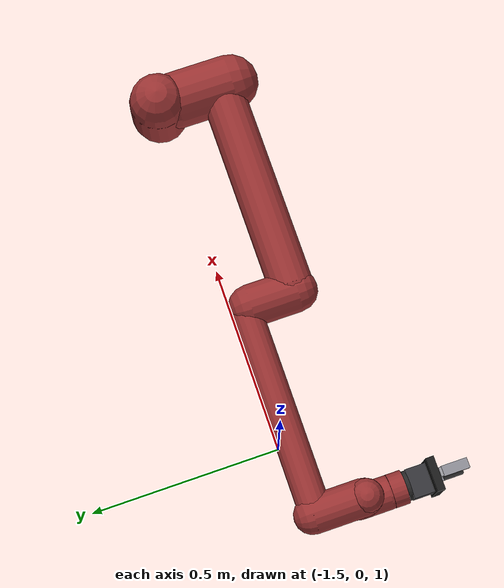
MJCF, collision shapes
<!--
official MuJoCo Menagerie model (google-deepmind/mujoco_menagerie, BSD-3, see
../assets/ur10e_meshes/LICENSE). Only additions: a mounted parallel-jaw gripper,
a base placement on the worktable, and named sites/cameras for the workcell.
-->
<mujoco model="ur10e">
  <compiler angle="radian" meshdir="../assets/ur10e_meshes" autolimits="true"/>

  <default>
    <default class="ur10e">
      <material specular="0.5" shininess="0.25"/>
      <joint axis="0 1 0" range="-6.28319 6.28319" armature="0.1"/>
      <position ctrlrange="-6.2831 6.2831"/>
      <general biastype="affine" ctrlrange="-6.2831 6.2831" gainprm="5000" biasprm="0 -5000 -500"/>
      <default class="size4">
        <joint damping="10"/>
        <general forcerange="-330 330"/>
      </default>
      <default class="size3">
        <joint damping="5"/>
        <general forcerange="-150 150"/>
        <default class="size3_limited">
          <joint range="-3.1415 3.1415"/>
          <general ctrlrange="-3.1415 3.1415"/>
        </default>
      </default>
      <default class="size2">
        <joint damping="2"/>
        <general forcerange="-56 56"/>
      </default>
      <default class="visual">
        <geom type="mesh" contype="0" conaffinity="0" group="2"/>
      </default>
      <default class="collision">
        <geom type="capsule" group="3" rgba="0.6 0.2 0.2 0.35"/>
        <default class="eef_collision">
          <geom type="cylinder"/>
        </default>
      </default>
      <site size="0.001" rgba="0.5 0.5 0.5 0.3" group="4"/>
    </default>
  </default>

  <asset>
    <material class="ur10e" name="ur_black" rgba="0.033 0.033 0.033 1"/>
    <material class="ur10e" name="ur_jointgray" rgba="0.278 0.278 0.278 1"/>
    <material class="ur10e" name="ur_linkgray" rgba="0.82 0.82 0.82 1"/>
    <material class="ur10e" name="ur_blue" rgba="0.49 0.678 0.8 1"/>

    <mesh file="base_0.obj"/>
    <mesh file="base_1.obj"/>
    <mesh file="shoulder_0.obj"/>
    <mesh file="shoulder_1.obj"/>
    <mesh file="shoulder_2.obj"/>
    <mesh file="upperarm_0.obj"/>
    <mesh file="upperarm_1.obj"/>
    <mesh file="upperarm_2.obj"/>
    <mesh file="upperarm_3.obj"/>
    <mesh file="forearm_0.obj"/>
    <mesh file="forearm_1.obj"/>
    <mesh file="forearm_2.obj"/>
    <mesh file="forearm_3.obj"/>
    <mesh file="wrist1_0.obj"/>
    <mesh file="wrist1_1.obj"/>
    <mesh file="wrist1_2.obj"/>
    <mesh file="wrist2_0.obj"/>
    <mesh file="wrist2_1.obj"/>
    <mesh file="wrist2_2.obj"/>
    <mesh file="wrist3.obj"/>
  </asset>

  <worldbody>
    <body name="robot_base" pos="-0.50 0 0.80" quat="0 0 0 -1" childclass="ur10e">
      <inertial mass="4.0" pos="0 0 0" diaginertia="0.0061063308908 0.0061063308908 0.01125"/>
      <geom mesh="base_0" material="ur_black" class="visual"/>
      <geom mesh="base_1" material="ur_jointgray" class="visual"/>
      <body name="shoulder_link" gravcomp="1" pos="0 0 0.181">
        <inertial pos="0 0 0" mass="7.778" diaginertia="0.0314743 0.0314743 0.0218756"/>
        <joint name="shoulder_pan_joint" class="size4" axis="0 0 1"/>
        <geom mesh="shoulder_0" material="ur_blue" class="visual"/>
        <geom mesh="shoulder_1" material="ur_black" class="visual"/>
        <geom mesh="shoulder_2" material="ur_jointgray" class="visual"/>
        <geom class="collision" size="0.078 0.05" pos="0 0 -0.02"/>
        <body name="upper_arm_link" gravcomp="1" pos="0 0.176 0" quat="1 0 1 0">
          <inertial pos="0 0 0.3065" mass="12.93" diaginertia="0.423074 0.423074 0.0363656"/>
          <joint name="shoulder_lift_joint" class="size4"/>
          <geom mesh="upperarm_0" material="ur_black" class="visual"/>
          <geom mesh="upperarm_1" material="ur_jointgray" class="visual"/>
          <geom mesh="upperarm_2" material="ur_blue" class="visual"/>
          <geom mesh="upperarm_3" material="ur_linkgray" class="visual"/>
          <geom class="collision" pos="0 -0.05 0" quat="1 1 0 0" size="0.078 0.08"/>
          <geom class="collision" size="0.06 0.3" pos="0 0 0.3"/>
          <body name="forearm_link" gravcomp="1" pos="0 -0.137 0.613">
            <inertial pos="0 0 0.2855" mass="3.87" diaginertia="0.11059 0.11059 0.0108844"/>
            <joint name="elbow_joint" class="size3_limited"/>
            <geom mesh="forearm_0" material="ur_blue" class="visual"/>
            <geom mesh="forearm_1" material="ur_black" class="visual"/>
            <geom mesh="forearm_2" material="ur_jointgray" class="visual"/>
            <geom mesh="forearm_3" material="ur_linkgray" class="visual"/>
            <geom class="collision" pos="0 0.08 0" quat="1 1 0 0" size="0.058 0.065"/>
            <geom class="collision" size="0.043 0.28" pos="0 0 0.29"/>
            <body name="wrist_1_link" gravcomp="1" pos="0 0 0.571" quat="1 0 1 0">
              <inertial pos="0 0.135 0" quat="0.5 0.5 -0.5 0.5" mass="1.96"
                diaginertia="0.0055125 0.00510825 0.00510825"/>
              <joint name="wrist_1_joint" class="size2"/>
              <geom mesh="wrist1_0" material="ur_black" class="visual"/>
              <geom mesh="wrist1_1" material="ur_blue" class="visual"/>
              <geom mesh="wrist1_2" material="ur_jointgray" class="visual"/>
              <geom class="collision" pos="0 0.06 0" quat="1 1 0 0" size="0.05 0.07"/>
              <body name="wrist_2_link" gravcomp="1" pos="0 0.135 0">
                <inertial pos="0 0 0.12" quat="0.5 0.5 -0.5 0.5" mass="1.96"
                  diaginertia="0.0055125 0.00510825 0.00510825"/>
                <joint name="wrist_2_joint" axis="0 0 1" class="size2"/>
                <geom mesh="wrist2_0" material="ur_black" class="visual"/>
                <geom mesh="wrist2_1" material="ur_blue" class="visual"/>
                <geom mesh="wrist2_2" material="ur_jointgray" class="visual"/>
                <geom class="collision" size="0.046 0.065" pos="0 0 0.05"/>
                <geom class="collision" pos="0 0.028 0.12" quat="1 1 0 0" size="0.046 0.043"/>
                <body name="wrist_3_link" gravcomp="1" pos="0 0 0.12">
                  <inertial pos="0 0.092 0" quat="0 1 -1 0" mass="0.202"
                    diaginertia="0.000204525 0.000144346 0.000144346"/>
                  <joint name="wrist_3_joint" class="size2"/>
                  <geom material="ur_linkgray" mesh="wrist3" class="visual"/>
                  <geom class="eef_collision" pos="0 0.097 0" quat="1 1 0 0" size="0.046 0.02"/>
                  <site name="attachment_site" pos="0 0.1 0" quat="-1 1 0 0"/>
                  <!-- ============ Parallel-jaw gripper (custom, see ASSUMPTIONS.md) ============ -->
                  <body name="gripper_base" gravcomp="1" pos="0 0.117 0" quat="-1 1 0 0">
                    <inertial pos="0 0 0.05" mass="1.2" diaginertia="0.003 0.003 0.0015"/>
                    <geom name="grip_flange" type="cylinder" size="0.04 0.006" pos="0 0 0.006" rgba="0.15 0.15 0.15 1" group="2" contype="0" conaffinity="0"/>
                    <geom name="grip_body" type="box" size="0.04 0.028 0.028" pos="0 0 0.04" rgba="0.2 0.2 0.22 1"/>
                    <geom name="grip_palm" type="box" size="0.046 0.075 0.011" pos="0 0 0.079" rgba="0.1 0.1 0.1 1"/>
                    <geom name="grip_rail" type="box" size="0.012 0.08 0.004" pos="0 0 0.094" rgba="0.6 0.6 0.62 1" group="2" contype="0" conaffinity="0"/>
                    <site name="pinch" pos="0 0 0.162" type="sphere" size="0.006" rgba="0.1 0.9 0.3 0.6" group="4"/>
                    <site name="tcp" pos="0 0 0.162" group="4"/>
                    <camera name="gripper_cam" pos="0.06 0 0.08" quat="0.5 -0.5 0.5 0.5" fovy="70"/>
                    <body name="left_finger" gravcomp="1" pos="0 0.07 0.098">
                      <inertial pos="0 0 0.035" mass="0.2" diaginertia="0.0002 0.0002 0.0001"/>
                      <joint name="left_finger_joint" type="slide" axis="0 -1 0" range="0 0.07" damping="30" armature="0.05"/>
                      <geom name="left_finger_geom" type="box" size="0.014 0.006 0.036" pos="0 0 0.036" rgba="0.55 0.55 0.58 1"/>
                      <geom name="left_pad" type="box" size="0.013 0.0025 0.028" pos="0 -0.0085 0.045" rgba="0.12 0.12 0.12 1"
                            friction="1.6 0.02 0.001" condim="4" solimp="0.9 0.95 0.001" solref="0.01 1" priority="2"/>
                    </body>
                    <body name="right_finger" gravcomp="1" pos="0 -0.07 0.098">
                      <inertial pos="0 0 0.035" mass="0.2" diaginertia="0.0002 0.0002 0.0001"/>
                      <joint name="right_finger_joint" type="slide" axis="0 1 0" range="0 0.07" damping="30" armature="0.05"/>
                      <geom name="right_finger_geom" type="box" size="0.014 0.006 0.036" pos="0 0 0.036" rgba="0.55 0.55 0.58 1"/>
                      <geom name="right_pad" type="box" size="0.013 0.0025 0.028" pos="0 0.0085 0.045" rgba="0.12 0.12 0.12 1"
                            friction="1.6 0.02 0.001" condim="4" solimp="0.9 0.95 0.001" solref="0.01 1" priority="2"/>
                    </body>
                  </body>
                </body>
              </body>
            </body>
          </body>
        </body>
      </body>
    </body>
  </worldbody>

  <contact>
    <exclude body1="gripper_base" body2="left_finger"/>
    <exclude body1="gripper_base" body2="right_finger"/>
    <exclude body1="wrist_3_link" body2="gripper_base"/>
    <exclude body1="wrist_2_link" body2="gripper_base"/>
  </contact>

  <equality>
    <joint name="finger_coupling" joint1="left_finger_joint" joint2="right_finger_joint" polycoef="0 1 0 0 0" solimp="0.9 0.95 0.001" solref="0.02 1"/>
  </equality>

  <actuator>
    <general class="size4" name="shoulder_pan" joint="shoulder_pan_joint"/>
    <general class="size4" name="shoulder_lift" joint="shoulder_lift_joint"/>
    <general class="size3_limited" name="elbow" joint="elbow_joint"/>
    <general class="size2" name="wrist_1" joint="wrist_1_joint"/>
    <general class="size2" name="wrist_2" joint="wrist_2_joint"/>
    <general class="size2" name="wrist_3" joint="wrist_3_joint"/>
    <!-- gripper: ctrl = finger travel per finger (0 = fully open, 140 mm aperture; 0.07 = closed) -->
    <general name="gripper" joint="left_finger_joint" biastype="affine" ctrlrange="0 0.07"
             gainprm="3000" biasprm="0 -3000 -150" forcerange="-60 60"/>
  </actuator>
</mujoco>
